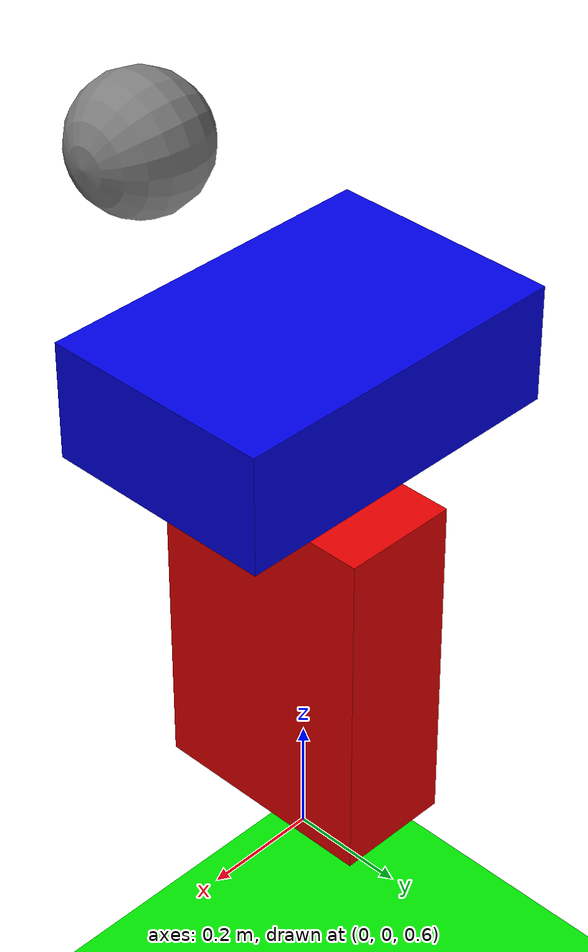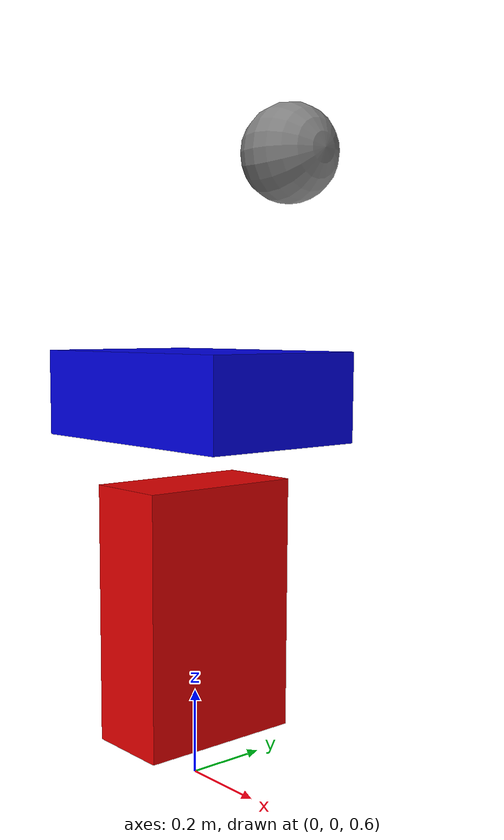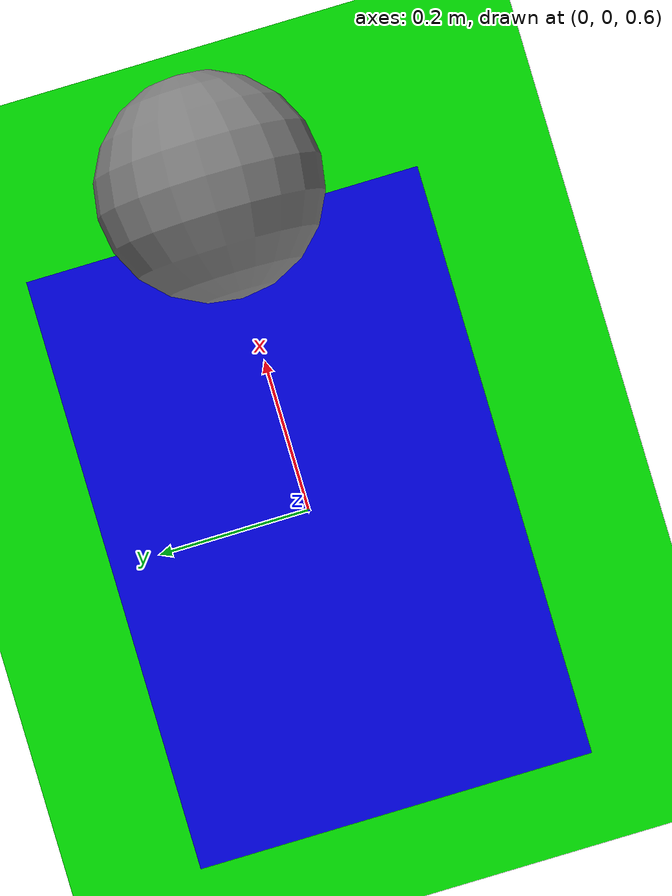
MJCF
<mujoco>
	<compiler angle="radian"/>
	<visual>
		<headlight ambient="0.5 0.5 0.5"/>
	</visual>
	<asset>
		<material name="white" rgba="1 1 1 1"/>
	</asset>
	<worldbody>
        <light diffuse=".5 .5 .5" pos="0 0 3" dir="0 0 -1"/>
		<geom type="plane" size="1 1 0.1" rgba="0 0.9 0 1"/>
		<body pos="0 0 1" euler="0 0 0">
			<joint type="free"/>
			<geom type="box" size=".1 .2 .3" rgba="0.9 0 0 1"/>
			<inertial pos="0 0 0" mass="1" diaginertia="0.01 0.01 0.01"/>
		</body>

		<body pos="0 0 1.5" euler="0 1.57 0">
			<joint type="free"/>
			<geom type="box" size=".1 .2 .3" rgba="0 0 0.9 1"/>
			<inertial pos="0 0 0" mass="1" diaginertia="0.01 0.01 0.01"/>
		</body>

		<body pos="0.3 0 2" euler="0 1.57 0">
			<joint type="free"/>
			<geom type="sphere" size=".1" rgba="0.5 0.5 0.5 1"/>
			<inertial pos="0 0 0" mass="1" diaginertia="0.01 0.01 0.01"/>
		</body>
	</worldbody>
</mujoco>
